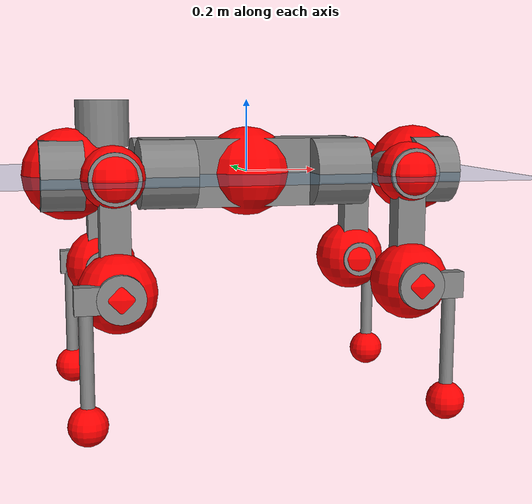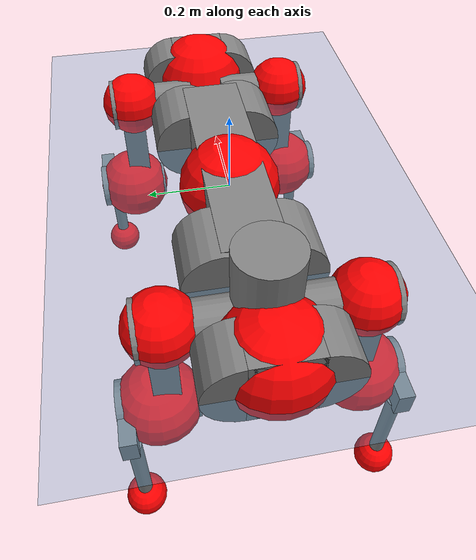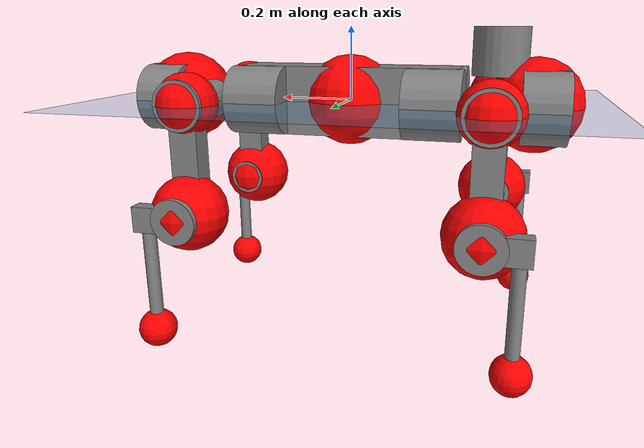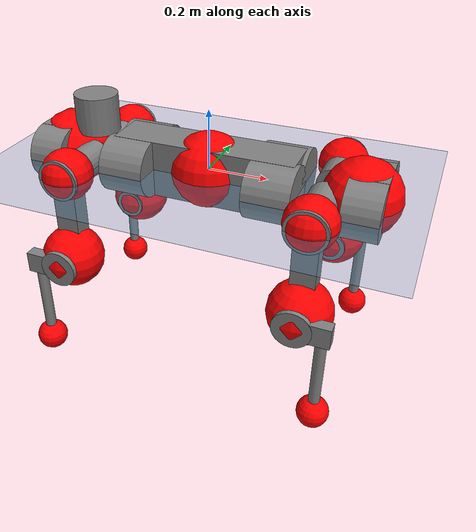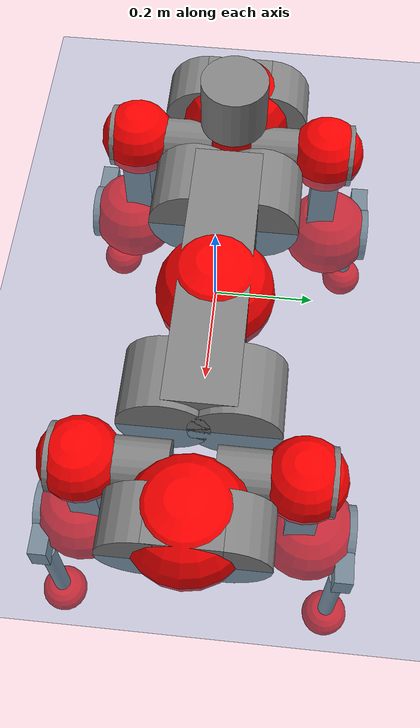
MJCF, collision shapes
<mujoco model="anymal_c">
  <compiler angle="radian" assetdir="assets" balanceinertia="true" inertiafromgeom="false"/>

  <option timestep="0.005" density="1.2" viscosity="2e-05"/>

  <size nkey="1"/>

  <visual>
    <quality shadowsize="8192"/>
    <map shadowclip="0.5"/>
  </visual>

  <default>
    <default class="/">
      <material specular="0" shininess="0.25"/>
      <geom contype="0" conaffinity="0" group="1" solref="-1000 -80"/>
      <site size="0.01 0.005 0.005" group="5"/>
      <general forcelimited="true" forcerange="-80 80" biastype="affine" gainprm="80" biasprm="0 -80 -2"/>
      <default class="anymal_c">
        <joint armature="0.01" damping="0.01" frictionloss="0.1"/>
        <default class="visual">
          <geom type="mesh" group="2"/>
          <default class="visual_zflip"/>
        </default>
        <default class="collision">
          <geom type="cylinder" group="3"/>
          <default class="foot">
            <geom size="0.03 0 0" type="sphere" condim="6" priority="1" friction="0.8 0.02 0.01" solimp="0.015 1 0.03"/>
          </default>
        </default>
      </default>
      <default class="reward_collision_sphere">
        <geom group="5" rgba="1 0 0 1"/>
      </default>
    </default>
  </default>

  <asset>
    <texture type="skybox" colorspace="auto" name="//unnamed_texture_0" builtin="gradient" rgb1="0.95 0.95 0.95" rgb2="0.95 0.95 0.95" width="100" height="600"/>
    <texture type="2d" colorspace="auto" name="texplane" builtin="checker" rgb1="0.345 0.575 0.748" rgb2="0.345 0.575 0.748" markrgb="1 1 1" width="512" height="512"/>
    <texture type="2d" colorspace="linear" name="base" file="base.png"/>
    <texture type="2d" colorspace="linear" name="top_shell" file="top_shell.png"/>
    <texture type="2d" colorspace="linear" name="bottom_shell" file="bottom_shell.png"/>
    <texture type="2d" colorspace="linear" name="remote" file="remote.png"/>
    <texture type="2d" colorspace="linear" name="hatch" file="hatch.png"/>
    <texture type="2d" colorspace="linear" name="handle" file="handle.png"/>
    <texture type="2d" colorspace="linear" name="face" file="face.png"/>
    <texture type="2d" colorspace="linear" name="battery" file="battery.png"/>
    <texture type="2d" colorspace="linear" name="lidar_cage" file="lidar_cage.png"/>
    <texture type="2d" colorspace="linear" name="depth_camera" file="depth_camera.png"/>
    <texture type="2d" colorspace="linear" name="wide_angle_camera" file="wide_angle_camera.png"/>
    <texture type="2d" colorspace="linear" name="lidar" file="lidar.png"/>
    <texture type="2d" colorspace="linear" name="drive" file="drive.png"/>
    <texture type="2d" colorspace="linear" name="hip_l" file="hip_l.png"/>
    <texture type="2d" colorspace="linear" name="shank_l" file="shank_l.png"/>
    <texture type="2d" colorspace="linear" name="foot" file="foot.png"/>
    <texture type="2d" colorspace="linear" name="thigh" file="thigh.png"/>
    <texture type="2d" colorspace="linear" name="shank_r" file="shank_r.png"/>
    <texture type="2d" colorspace="linear" name="hip_r" file="hip_r.png"/>
    <material name="MatPlane" class="/" texture="texplane" texuniform="true" texrepeat="2 2" specular="0.9" shininess="0.5"/>
    <material name="black_plastic" class="/" rgba="0.007 0.007 0.007 1"/>
    <material name="green" class="/" rgba="0.052 0.178 0.033 1"/>
    <material name="red" class="/" rgba="0.178 0.006 0.005 1"/>
    <material name="yellow" class="/" rgba="0.178 0.119 0.006 1"/>
    <material name="lwl" class="/" rgba="0.8 0.8 0.8 1"/>
    <material name="base" class="/" texture="base"/>
    <material name="top_shell" class="/" texture="top_shell"/>
    <material name="bottom_shell" class="/" texture="bottom_shell"/>
    <material name="hip_l" class="/" texture="hip_l"/>
    <material name="thigh" class="/" texture="thigh"/>
    <material name="shank_l" class="/" texture="shank_l"/>
    <material name="foot" class="/" texture="foot"/>
    <material name="hip_r" class="/" texture="hip_r"/>
    <material name="shank" class="/" texture="shank_r"/>
    <material name="hatch" class="/" texture="hatch"/>
    <material name="remote" class="/" texture="remote"/>
    <material name="handle" class="/" texture="handle"/>
    <material name="face" class="/" texture="face"/>
    <material name="depth_camera" class="/" texture="depth_camera"/>
    <material name="wide_angle_camera" class="/" texture="wide_angle_camera"/>
    <material name="battery" class="/" texture="battery"/>
    <material name="lidar_cage" class="/" texture="lidar_cage"/>
    <material name="lidar" class="/" texture="lidar"/>
    <material name="drive" class="/" texture="drive"/>
    <mesh name="base_0" class="/" file="base_0.obj"/>
    <mesh name="base_1" class="/" file="base_1.obj"/>
    <mesh name="base_2" class="/" file="base_2.obj"/>
    <mesh name="base_3" class="/" file="base_3.obj"/>
    <mesh name="base_4" class="/" file="base_4.obj"/>
    <mesh name="base_5" class="/" file="base_5.obj"/>
    <mesh name="top_shell" class="/" file="top_shell.obj"/>
    <mesh name="bottom_shell" class="/" file="bottom_shell.obj"/>
    <mesh name="remote" class="/" file="remote.obj"/>
    <mesh name="handle" class="/" file="handle.obj"/>
    <mesh name="face" class="/" file="face.obj"/>
    <mesh name="wide_angle_camera" class="/" file="wide_angle_camera.obj"/>
    <mesh name="depth_camera" class="/" file="depth_camera.obj"/>
    <mesh name="battery" class="/" file="battery.obj"/>
    <mesh name="lidar_cage" class="/" file="lidar_cage.obj"/>
    <mesh name="lidar" class="/" file="lidar.obj"/>
    <mesh name="drive" class="/" file="drive.obj"/>
    <mesh name="hip_l" class="/" file="hip_l.obj"/>
    <mesh name="thigh" class="/" file="thigh.obj"/>
    <mesh name="shank_l" class="/" file="shank_l.obj"/>
    <mesh name="foot" class="/" file="foot.obj"/>
    <mesh name="hip_r" class="/" file="hip_r.obj"/>
    <mesh name="hatch" class="/" file="hatch.obj"/>
    <mesh name="shank_r" class="/" file="shank_r.obj"/>
  </asset>

  <worldbody>
    <geom name="floor" class="/" size="100 100 0.125" type="plane" group="0" material="MatPlane"/>
    <light name="toplight_shadow" class="/" pos="0 0 5" dir="0.0990148 0.0990148 -0.990148" type="directional" ambient="0.04 0.04 0.04" diffuse="0.55 0.55 0.55" specular="0.12 0.12 0.12"/>
    <light name="toplight_fill" class="/" pos="0 0 5" dir="0.0990148 0.0990148 -0.990148" type="directional" castshadow="false" ambient="0.04 0.04 0.04" diffuse="0.3 0.3 0.3" specular="0.08 0.08 0.08"/>
    <body name="trunk" childclass="anymal_c" pos="0.000857336 -0.000229995 -0.000174014" quat="1 -0.000210036 -0.000242979 -2.9658e-05">
      <inertial pos="0.000292793 -0.00279738 0.0493377" quat="0.499524 0.499158 0.50415 0.497141" mass="22.6582" diaginertia="1.07614 0.609115 0.247793"/>
      <joint name="//unnamed_joint_0" type="free" armature="0" damping="0" frictionloss="0"/>
      <geom name="//unnamed_geom_1" class="visual" material="green" mesh="base_0"/>
      <geom name="//unnamed_geom_2" class="visual" material="yellow" mesh="base_1"/>
      <geom name="//unnamed_geom_3" class="visual" material="red" mesh="base_2"/>
      <geom name="//unnamed_geom_4" class="visual" material="black_plastic" mesh="base_3"/>
      <geom name="//unnamed_geom_5" class="visual" material="lwl" mesh="base_4"/>
      <geom name="//unnamed_geom_6" class="visual" material="base" mesh="base_5"/>
      <geom name="trunk_1" class="collision" size="0.302959 0.073128 0.0940217" type="box"/>
      <geom name="trunk_2" class="collision" size="0.0940217 0.0757397" pos="0.241338 0.069709 0" quat="0.707107 0 0.707107 0"/>
      <geom name="trunk_3" class="collision" size="0.0940217 0.0757397" pos="-0.241338 0.069709 0" quat="0.707107 0 0.707107 0"/>
      <geom name="trunk_4" class="collision" size="0.0940217 0.0757397" pos="0.241338 -0.069709 0" quat="0.707107 0 0.707107 0"/>
      <geom name="trunk_5" class="collision" size="0.0940217 0.0757397" pos="-0.241338 -0.069709 0" quat="0.707107 0 0.707107 0"/>
      <geom name="//unnamed_geom_12" class="visual" material="top_shell" mesh="top_shell"/>
      <geom name="//unnamed_geom_13" class="visual" material="bottom_shell" mesh="bottom_shell"/>
      <geom name="//unnamed_geom_14" class="visual" material="remote" mesh="remote"/>
      <geom name="//unnamed_geom_15" class="visual" material="handle" mesh="handle"/>
      <geom name="//unnamed_geom_16" class="visual" pos="0.45993 0 0" quat="1 0 0 0" material="face" mesh="face"/>
      <geom name="trunk_6" class="collision" size="0.0574577 0.073128 0.0940217" pos="0.520958 0 0" type="box"/>
      <geom name="//unnamed_geom_18" class="collision" size="0.0940217 0.0574577" pos="0.520958 0.069709 0" quat="0.707107 0 0.707107 0"/>
      <geom name="//unnamed_geom_19" class="collision" size="0.0940217 0.0574577" pos="0.520958 -0.069709 0" quat="0.707107 0 0.707107 0"/>
      <geom name="//unnamed_geom_20" class="visual" pos="0.512244 0 -0.02942" quat="0.965926 0 0.258819 0" material="depth_camera" mesh="depth_camera"/>
      <geom name="//unnamed_geom_21" class="visual" pos="0.569226 0 0.0153983" material="wide_angle_camera" mesh="wide_angle_camera"/>
      <geom name="//unnamed_geom_22" class="visual_zflip" pos="-0.45993 0 0" quat="0 0 0 1" material="face" mesh="face"/>
      <geom name="trunk_7" class="collision" size="0.0574577 0.073128 0.0940217" pos="-0.520958 0 0" quat="0 0 0 1" type="box"/>
      <geom name="//unnamed_geom_24" class="collision" size="0.0940217 0.0574577" pos="-0.520958 -0.069709 0" quat="0 -0.707107 0 0.707107"/>
      <geom name="//unnamed_geom_25" class="collision" size="0.0940217 0.0574577" pos="-0.520958 0.069709 0" quat="0 -0.707107 0 0.707107"/>
      <geom name="//unnamed_geom_26" class="visual" pos="-0.512244 0 -0.02942" quat="0 -0.258819 0 0.965926" material="depth_camera" mesh="depth_camera"/>
      <geom name="//unnamed_geom_27" class="visual_zflip" pos="-0.569226 0 0.0153983" quat="0 0 0 1" material="wide_angle_camera" mesh="wide_angle_camera"/>
      <geom name="//unnamed_geom_28" class="visual" material="battery" mesh="battery"/>
      <geom name="//unnamed_geom_29" class="visual" pos="0 0.074646 0.0304967" quat="0.683013 -0.183013 0.183013 0.683013" material="depth_camera" mesh="depth_camera"/>
      <geom name="//unnamed_geom_30" class="visual" pos="0 -0.074646 0.0304967" quat="0.683013 0.183013 0.183013 -0.683013" material="depth_camera" mesh="depth_camera"/>
      <geom name="//unnamed_geom_31" class="visual" pos="-0.403895 0 0.0756031" quat="1 0 0 0" material="lidar_cage" mesh="lidar_cage"/>
      <geom name="trunk_8" class="collision" size="0.073128 0.0626811" pos="-0.403895 0 0.13732"/>
      <geom name="//unnamed_geom_33" class="visual" pos="-0.403895 -4.46927e-05 0.146269" quat="0.707107 0 0 -0.707107" material="lidar" mesh="lidar"/>
      <geom name="//unnamed_geom_34" class="visual" pos="0.332769 0.103579 -5.65289e-10" quat="0.258819 0.965926 0 0" material="drive" mesh="drive"/>
      <geom name="//unnamed_geom_35" class="visual" pos="0.332769 -0.103579 5.65289e-10" quat="0.258819 -0.965926 0 0" material="drive" mesh="drive"/>
      <geom name="//unnamed_geom_36" class="visual" pos="-0.332769 0.103579 5.65289e-10" quat="0 0 0.965926 -0.258819" material="drive" mesh="drive"/>
      <geom name="//unnamed_geom_37" class="visual" pos="-0.332769 -0.103579 -5.65289e-10" quat="0 0 -0.965926 -0.258819" material="drive" mesh="drive"/>
      <geom name="//unnamed_geom_38" class="visual" pos="0.128714 0 0.0750888" quat="1 0 0 0" material="hatch" mesh="hatch"/>
      <geom name="//unnamed_geom_39" class="reward_collision_sphere" size="0.125362"/>
      <geom name="//unnamed_geom_40" class="reward_collision_sphere" size="0.125362" pos="0.499321 0 0"/>
      <geom name="//unnamed_geom_41" class="reward_collision_sphere" size="0.125362" pos="-0.499321 0 0"/>
      <site name="imu" pos="0.28974 0.00903857 0.0339123" size="0.0104469"/>
      <camera name="track" pos="0 -1.99169 0" quat="0.707107 0.707107 0 0" mode="trackcom"/>
      <camera name="ego_camera" pos="0.499321 0 -0.0411445" quat="-0.5 -0.5 0.5 0.5"/>
      <body name="LF_HIP" pos="0.330783 0.101327 -0.00106403" quat="0.258562 0.965995 -0.000350769 -4.05886e-05">
        <inertial pos="0.0628639 -0.0173694 -0.00813986" quat="-0.126981 0.710098 -0.135074 0.679258" mass="3.11975" diaginertia="0.00959822 0.00451847 0.0036756"/>
        <joint name="LF_HAA" pos="0 0 0" axis="0.999999 0.00164075 0.000538654" range="-0.719257 0.496874" armature="0.0107059" damping="0.0191043" frictionloss="0.0934426"/>
        <geom name="//unnamed_geom_42" class="visual" pos="0 -3.32534e-05 5.46184e-06" quat="0.258819 -0.965926 0 0" material="hip_l" mesh="hip_l"/>
        <geom name="//unnamed_geom_43" class="visual" pos="0.0664651 -0.0790505 -0.0458822" quat="0.183013 -0.683013 0.683013 0.183013" material="drive" mesh="drive"/>
        <geom name="//unnamed_geom_44" class="collision" size="0.0522343 0.073128" pos="0.0664651 -0.0119101 -0.00710257" quat="-0.353553 -0.612372 0.612372 -0.353553"/>
        <body name="LF_THIGH" pos="0.065465 -0.0696815 -0.0422367" quat="0.182874 -0.682468 0.683852 0.182048">
          <inertial pos="0.0347065 0.000173084 -0.251309" quat="0.993246 -0.00714076 -0.0705759 0.0918152" mass="3.4126" diaginertia="0.0509137 0.028438 0.00480103"/>
          <joint name="LF_HFE" pos="0 0 0" axis="0.999992 -0.00359291 -0.00172627" stiffness="0.00238761" range="-3.08909 3.17879" armature="0.0109326" damping="0.0209629" frictionloss="0.0966591"/>
          <geom name="//unnamed_geom_45" class="visual" pos="0.00226335 3.56651e-06 0" quat="0.707107 0 0 -0.707107" material="thigh" mesh="thigh"/>
          <geom name="//unnamed_geom_46" class="collision" size="0.0679046 0.0417874" pos="0.0443841 0 0" quat="0.5 0.5 -0.5 -0.5"/>
          <geom name="//unnamed_geom_47" class="collision" size="0.0391757 0.0313406 0.147629" pos="0.033288 0 -0.145357" quat="0.707107 0 0 -0.707107" type="box"/>
          <geom name="//unnamed_geom_48" class="visual" pos="0.111293 0 -0.293155" quat="1 0 0 0" material="drive" mesh="drive"/>
          <geom name="//unnamed_geom_49" class="collision" size="0.0522343 0.073128" pos="0.0336209 0 -0.293155" quat="0.707107 0 0.707107 0"/>
          <geom name="//unnamed_geom_50" class="reward_collision_sphere" size="0.0835749" pos="0.02774 0 0"/>
          <body name="LF_SHANK" pos="0.111998 0.00261824 -0.292861" quat="1 2.06541e-05 0.000338259 0.000213589">
            <inertial pos="0.00620534 -0.0620485 -0.0838537" quat="0.993032 -0.115452 0.000329226 -0.0236115" mass="0.678322" diaginertia="0.0167381 0.00911993 0.00128861"/>
            <joint name="LF_KFE" pos="0 0 0" axis="0.999991 0.0043204 2.29849e-05" range="-3.10025 3.14213" armature="0.0103228" damping="0.00777312" frictionloss="0.106297"/>
            <geom name="//unnamed_geom_51" class="visual" pos="0.000738028 0.0039352 0" quat="0.707107 0 0 -0.707107" material="shank_l" mesh="shank_l"/>
            <geom name="LF_kfe_act" class="collision" size="0.0626811 0.0208937" pos="0.022192 0 0" quat="0.5 0.5 -0.5 -0.5"/>
            <geom name="//unnamed_geom_53" class="collision" size="0.0600684 0.0352581 0.019849" pos="0.022192 -0.05726 0" quat="0.5 0.5 -0.5 -0.5" type="box"/>
            <geom name="//unnamed_geom_54" class="visual" pos="0.0144801 -0.0863162 -0.34764" quat="0.382683 0 0 -0.92388" material="foot" mesh="foot"/>
            <geom name="LF_calf" class="collision" size="0.018282 0.147564" pos="0.0144803 -0.0875844 -0.17382" quat="0.707107 0 0 -0.707107"/>
            <geom name="LF_foot" class="foot" size="0.0308636" pos="0.0144803 -0.0875844 -0.324497" quat="0.707107 0 0 -0.707107"/>
            <geom name="//unnamed_geom_57" class="reward_collision_sphere" size="0.104469" pos="-0.0554801 0 0"/>
            <geom name="//unnamed_geom_58" class="reward_collision_sphere" size="0.0522343" pos="0.0144803 -0.0875844 -0.324497"/>
            <site name="LF_foot" class="foot" pos="0.0144803 -0.0875844 -0.324497" quat="0.707107 0 0 -0.707107" size="0.0104469"/>
          </body>
        </body>
      </body>
      <body name="RF_HIP" pos="0.330502 -0.103952 0.0010076" quat="0.258819 -0.965926 -2.91744e-05 2.85395e-05">
        <inertial pos="0.061147 0.0131817 -0.0106979" quat="0.138498 0.673571 0.13887 0.712626" mass="3.13335" diaginertia="0.00941021 0.00491978 0.00362425"/>
        <joint name="RF_HAA" pos="0 0 0" axis="0.999939 0.0110344 0.00028711" range="-0.511951 0.726255" armature="0.0105035" damping="0" frictionloss="0.104469"/>
        <geom name="//unnamed_geom_59" class="visual" pos="0 3.32531e-05 5.46183e-06" quat="0.258819 0.965926 0 0" material="hip_r" mesh="hip_r"/>
        <geom name="//unnamed_geom_60" class="visual" pos="0.0664651 0.0790505 -0.0458822" quat="0.183013 0.683013 0.683013 -0.183013" material="drive" mesh="drive"/>
        <geom name="//unnamed_geom_61" class="collision" size="0.0522343 0.073128" pos="0.0664651 0.0119101 -0.00710257" quat="-0.353553 0.612372 0.612372 0.353553"/>
        <body name="RF_THIGH" pos="0.0680955 0.0716919 -0.0456826" quat="0.183755 0.683224 0.682832 -0.182155">
          <inertial pos="0.0369839 0.000446776 -0.25383" quat="0.993255 -0.0117786 -0.0790166 0.0840349" mass="3.66248" diaginertia="0.0503373 0.0286692 0.0050495"/>
          <joint name="RF_HFE" pos="0 0 0" axis="0.999999 0.00148412 -0.000445862" range="-3.14697 3.15931" armature="0.00948827" damping="0.0112742" frictionloss="0.106656"/>
          <geom name="//unnamed_geom_62" class="visual" pos="0.00226335 3.56651e-06 0" quat="0.707107 0 0 -0.707107" material="thigh" mesh="thigh"/>
          <geom name="//unnamed_geom_63" class="collision" size="0.0679046 0.0417874" pos="0.0443841 0 0" quat="0.5 0.5 0.5 0.5"/>
          <geom name="//unnamed_geom_64" class="collision" size="0.0391757 0.0313406 0.147629" pos="0.033288 0 -0.145357" quat="0.707107 0 0 0.707107" type="box"/>
          <geom name="//unnamed_geom_65" class="visual" pos="0.111293 0 -0.293155" quat="1 0 0 0" material="drive" mesh="drive"/>
          <geom name="//unnamed_geom_66" class="collision" size="0.0522343 0.073128" pos="0.0336209 0 -0.293155" quat="0.707107 0 0.707107 0"/>
          <geom name="//unnamed_geom_67" class="reward_collision_sphere" size="0.0835749" pos="0.02774 0 0"/>
          <body name="RF_SHANK" pos="0.109341 -1.92135e-05 -0.293056" quat="1 5.20062e-06 0.000500569 0.000549323">
            <inertial pos="0.00379845 0.0609248 -0.0829056" quat="0.993837 0.109168 -0.00856619 0.0172108" mass="0.706561" diaginertia="0.0177251 0.00925529 0.00132565"/>
            <joint name="RF_KFE" pos="0 0 0" axis="0.999999 0.000639753 -0.00142279" range="-3.19096 3.10159" armature="0.0119535" damping="0.0228012" frictionloss="0.108013"/>
            <geom name="//unnamed_geom_68" class="visual" pos="0.000738024 -0.0039352 0" quat="0.707107 0 0 0.707107" material="shank" mesh="shank_r"/>
            <geom name="RF_kfe_act" class="collision" size="0.0626811 0.0208937" pos="0.022192 0 0" quat="0.5 0.5 0.5 0.5"/>
            <geom name="//unnamed_geom_70" class="collision" size="0.0600684 0.0352581 0.019849" pos="0.022192 0.05726 0" quat="0.5 0.5 0.5 0.5" type="box"/>
            <geom name="//unnamed_geom_71" class="visual" pos="0.0144805 0.0863162 -0.34764" quat="0.382683 0 0 0.92388" material="foot" mesh="foot"/>
            <geom name="RF_calf" class="collision" size="0.018282 0.147564" pos="0.0144803 0.0875844 -0.17382" quat="0.707107 0 0 0.707107"/>
            <geom name="RF_foot" class="foot" size="0.0280331" pos="0.0144803 0.0875844 -0.324497" quat="0.707107 0 0 0.707107"/>
            <geom name="//unnamed_geom_74" class="reward_collision_sphere" size="0.104469" pos="-0.0554801 0 0"/>
            <geom name="//unnamed_geom_75" class="reward_collision_sphere" size="0.0522343" pos="0.0144803 0.0875844 -0.324497"/>
            <site name="RF_foot" class="foot" pos="0.0144803 0.0875844 -0.324497" quat="0.707107 0 0 0.707107" size="0.0104469"/>
          </body>
        </body>
      </body>
      <body name="LH_HIP" pos="-0.329422 0.10178 -0.00143105" quat="-2.39651e-06 -2.21242e-05 0.965963 -0.258682">
        <inertial pos="0.0629741 0.0171444 -0.0112433" quat="0.131853 0.687101 0.133374 0.701939" mass="3.28327" diaginertia="0.0104802 0.00504519 0.00385174"/>
        <joint name="LH_HAA" pos="0 0 0" axis="0.999894 0.0139746 -0.00398489" range="-0.502541 0.722631" armature="0.0108471" damping="0" frictionloss="0.105349"/>
        <geom name="//unnamed_geom_76" class="visual" pos="0 3.32531e-05 5.46183e-06" quat="-0.258819 -0.965926 0 0" material="hip_r" mesh="hip_r"/>
        <geom name="//unnamed_geom_77" class="visual" pos="0.0664651 0.0790505 -0.0458822" quat="0.183013 0.683013 0.683013 -0.183013" material="drive" mesh="drive"/>
        <geom name="//unnamed_geom_78" class="collision" size="0.0522343 0.073128" pos="0.0664651 0.0119101 -0.00710257" quat="-0.353553 0.612372 0.612372 0.353553"/>
        <body name="LH_THIGH" pos="0.0657167 0.0713903 -0.0437132" quat="0.183256 0.683079 0.682869 -0.183056">
          <inertial pos="0.0318529 -0.000430807 -0.255221" quat="0.992756 -0.00462356 -0.081219 0.0884193" mass="3.38678" diaginertia="0.0478674 0.0292416 0.00468142"/>
          <joint name="LH_HFE" pos="0 0 0" axis="1 -0.000713059 0.000303555" stiffness="0.010523" range="-3.16593 3.09825" armature="0.00989943" damping="0" frictionloss="0.10411"/>
          <geom name="//unnamed_geom_79" class="visual" pos="0.00226335 3.56651e-06 0" quat="0.707107 0 0 -0.707107" material="thigh" mesh="thigh"/>
          <geom name="//unnamed_geom_80" class="collision" size="0.0679046 0.0417874" pos="0.0443841 0 0" quat="0.5 0.5 -0.5 -0.5"/>
          <geom name="//unnamed_geom_81" class="collision" size="0.0391757 0.0313406 0.147629" pos="0.033288 0 -0.145357" quat="0.707107 0 0 -0.707107" type="box"/>
          <geom name="//unnamed_geom_82" class="visual" pos="0.111293 0 -0.293155" quat="1 0 0 0" material="drive" mesh="drive"/>
          <geom name="//unnamed_geom_83" class="collision" size="0.0522343 0.073128" pos="0.0336209 0 -0.293155" quat="0.707107 0 0.707107 0"/>
          <geom name="//unnamed_geom_84" class="reward_collision_sphere" size="0.0835749" pos="0.02774 0 0"/>
          <body name="LH_SHANK" pos="0.111144 -0.00119796 -0.292735" quat="1 -7.50226e-05 -0.00018508 4.72303e-06">
            <inertial pos="0.00720009 0.0636739 -0.0825857" quat="0.992565 0.118105 -0.00991056 0.0276961" mass="0.688779" diaginertia="0.0171258 0.00963272 0.00131804"/>
            <joint name="LH_KFE" pos="0 0 0" axis="1 -0.000118852 0.000701187" range="-3.08998 3.09563" armature="0.0119002" damping="0.0234685" frictionloss="0.0904532"/>
            <geom name="//unnamed_geom_85" class="visual" pos="0.000738024 -0.0039352 0" quat="-0.707107 0 0 -0.707107" material="shank" mesh="shank_r"/>
            <geom name="LH_kfe_act" class="collision" size="0.0626811 0.0208937" pos="0.022192 0 0" quat="0.5 0.5 -0.5 -0.5"/>
            <geom name="//unnamed_geom_87" class="collision" size="0.0600684 0.0352581 0.019849" pos="0.022192 0.05726 0" quat="0.5 0.5 -0.5 -0.5" type="box"/>
            <geom name="//unnamed_geom_88" class="visual" pos="0.0144805 0.0863162 -0.34764" quat="-0.382683 0 0 -0.92388" material="foot" mesh="foot"/>
            <geom name="LH_calf" class="collision" size="0.018282 0.147564" pos="0.0144803 0.0875844 -0.17382" quat="0.707107 0 0 -0.707107"/>
            <geom name="LH_foot" class="foot" size="0.0336896" pos="0.0144803 0.0875844 -0.324497" quat="0.707107 0 0 -0.707107"/>
            <geom name="//unnamed_geom_91" class="reward_collision_sphere" size="0.104469" pos="-0.0554801 0 0"/>
            <geom name="//unnamed_geom_92" class="reward_collision_sphere" size="0.0522343" pos="0.0144803 0.0875844 -0.324497"/>
            <site name="LH_foot" class="foot" pos="0.0144803 0.0875844 -0.324497" quat="0.707107 0 0 -0.707107" size="0.0104469"/>
          </body>
        </body>
      </body>
      <body name="RH_HIP" pos="-0.33029 -0.104609 0.00109764" quat="-2.91626e-06 -6.37656e-05 -0.965929 -0.258808">
        <inertial pos="0.0611821 -0.0140724 -0.0113521" quat="-0.126542 0.708107 -0.124788 0.683374" mass="3.17543" diaginertia="0.00953336 0.00468724 0.0036665"/>
        <joint name="RH_HAA" pos="0 0 0" axis="0.999893 0.00166116 -0.0145564" stiffness="0.00151598" range="-0.778333 0.519657" armature="0.0102466" damping="0.00418635" frictionloss="0.105288"/>
        <geom name="//unnamed_geom_93" class="visual" pos="0 -3.32534e-05 5.46184e-06" quat="-0.258819 0.965926 0 0" material="hip_l" mesh="hip_l"/>
        <geom name="//unnamed_geom_94" class="visual" pos="0.0664651 -0.0790505 -0.0458822" quat="-0.183013 0.683013 -0.683013 -0.183013" material="drive" mesh="drive"/>
        <geom name="//unnamed_geom_95" class="collision" size="0.0522343 0.073128" pos="0.0664651 -0.0119101 -0.00710257" quat="0.353553 0.612372 -0.612372 0.353553"/>
        <body name="RH_THIGH" pos="0.0689476 -0.0717083 -0.0452823" quat="-0.183326 0.683734 -0.682099 -0.183414">
          <inertial pos="0.034789 0.00149774 -0.253466" quat="0.993104 -0.00580126 -0.0811988 0.0843621" mass="3.31208" diaginertia="0.0481229 0.0286572 0.0047517"/>
          <joint name="RH_HFE" pos="0 0 0" axis="0.999982 0.00604838 -0.000132129" stiffness="0.0029093" range="-3.10695 3.1569" armature="0.0110034" damping="0.0140036" frictionloss="0.106026"/>
          <geom name="//unnamed_geom_96" class="visual" pos="0.00226335 3.56651e-06 0" quat="0.707107 0 0 -0.707107" material="thigh" mesh="thigh"/>
          <geom name="//unnamed_geom_97" class="collision" size="0.0679046 0.0417874" pos="0.0443841 0 0" quat="0.5 0.5 0.5 0.5"/>
          <geom name="//unnamed_geom_98" class="collision" size="0.0391757 0.0313406 0.147629" pos="0.033288 0 -0.145357" quat="0.707107 0 0 0.707107" type="box"/>
          <geom name="//unnamed_geom_99" class="visual" pos="0.111293 0 -0.293155" quat="1 0 0 0" material="drive" mesh="drive"/>
          <geom name="//unnamed_geom_100" class="collision" size="0.0522343 0.073128" pos="0.0336209 0 -0.293155" quat="0.707107 0 0.707107 0"/>
          <geom name="//unnamed_geom_101" class="reward_collision_sphere" size="0.0835749" pos="0.02774 0 0"/>
          <body name="RH_SHANK" pos="0.110361 0.00266497 -0.292605" quat="0.999999 -0.000473228 -0.000391714 -0.00119711">
            <inertial pos="0.00883032 -0.061417 -0.0837576" quat="0.992196 -0.123414 0.00472567 -0.0171175" mass="0.682587" diaginertia="0.016774 0.00905718 0.00127003"/>
            <joint name="RH_KFE" pos="0 0 0" axis="1 0.000418216 -0.000558386" range="-3.13566 3.19037" armature="0.0105175" damping="0.0232331" frictionloss="0.107715"/>
            <geom name="//unnamed_geom_102" class="visual" pos="0.000738028 0.0039352 0" quat="0.707107 0 0 -0.707107" material="shank_l" mesh="shank_l"/>
            <geom name="RH_kfe_act" class="collision" size="0.0626811 0.0208937" pos="0.022192 0 0" quat="0.5 0.5 0.5 0.5"/>
            <geom name="//unnamed_geom_104" class="collision" size="0.0600684 0.0352581 0.019849" pos="0.022192 -0.05726 0" quat="0.5 0.5 0.5 0.5" type="box"/>
            <geom name="//unnamed_geom_105" class="visual" pos="0.0144801 -0.0863162 -0.34764" quat="0.382683 0 0 -0.92388" material="foot" mesh="foot"/>
            <geom name="RH_calf" class="collision" size="0.018282 0.147564" pos="0.0144803 -0.0875844 -0.17382" quat="0.707107 0 0 0.707107"/>
            <geom name="RH_foot" class="foot" size="0.0275851" pos="0.0144803 -0.0875844 -0.324497" quat="0.707107 0 0 0.707107"/>
            <geom name="//unnamed_geom_108" class="reward_collision_sphere" size="0.104469" pos="-0.0554801 0 0"/>
            <geom name="//unnamed_geom_109" class="reward_collision_sphere" size="0.0522343" pos="0.0144803 -0.0875844 -0.324497"/>
            <site name="RH_foot" class="foot" pos="0.0144803 -0.0875844 -0.324497" quat="0.707107 0 0 0.707107" size="0.0104469"/>
          </body>
        </body>
      </body>
    </body>
  </worldbody>

  <contact>
    <pair class="/" geom1="floor" geom2="LF_foot" name="//unnamed_contact_0"/>
    <pair class="/" geom1="floor" geom2="RF_foot" name="//unnamed_contact_1"/>
    <pair class="/" geom1="floor" geom2="LH_foot" name="//unnamed_contact_2"/>
    <pair class="/" geom1="floor" geom2="RH_foot" name="//unnamed_contact_3"/>
  </contact>

  <actuator>
    <general name="LF_HAA" class="/" joint="LF_HAA" forcerange="-76.6052 76.6052" gainprm="80.8708" biasprm="0 -80.8708 -2.09101"/>
    <general name="LF_HFE" class="/" joint="LF_HFE" forcerange="-75.1189 75.1189" gainprm="80.8708" biasprm="0 -80.8708 -2.09101"/>
    <general name="LF_KFE" class="/" joint="LF_KFE" forcerange="-85.2495 85.2495" gainprm="80.8708" biasprm="0 -80.8708 -2.09101"/>
    <general name="RF_HAA" class="/" joint="RF_HAA" forcerange="-85.466 85.466" gainprm="80.8708" biasprm="0 -80.8708 -2.09101"/>
    <general name="RF_HFE" class="/" joint="RF_HFE" forcerange="-92.8438 92.8438" gainprm="80.8708" biasprm="0 -80.8708 -2.09101"/>
    <general name="RF_KFE" class="/" joint="RF_KFE" forcerange="-87.0592 87.0592" gainprm="80.8708" biasprm="0 -80.8708 -2.09101"/>
    <general name="LH_HAA" class="/" joint="LH_HAA" forcerange="-84.7825 84.7825" gainprm="80.8708" biasprm="0 -80.8708 -2.09101"/>
    <general name="LH_HFE" class="/" joint="LH_HFE" forcerange="-76.8089 76.8089" gainprm="80.8708" biasprm="0 -80.8708 -2.09101"/>
    <general name="LH_KFE" class="/" joint="LH_KFE" forcerange="-85.553 85.553" gainprm="80.8708" biasprm="0 -80.8708 -2.09101"/>
    <general name="RH_HAA" class="/" joint="RH_HAA" forcerange="-85.047 85.047" gainprm="80.8708" biasprm="0 -80.8708 -2.09101"/>
    <general name="RH_HFE" class="/" joint="RH_HFE" forcerange="-92.7104 92.7104" gainprm="80.8708" biasprm="0 -80.8708 -2.09101"/>
    <general name="RH_KFE" class="/" joint="RH_KFE" forcerange="-80.4438 80.4438" gainprm="80.8708" biasprm="0 -80.8708 -2.09101"/>
  </actuator>

  <sensor>
    <gyro site="imu" name="imu_angular_velocity"/>
    <velocimeter site="imu" name="imu_linear_velocity"/>
    <framelinvel objtype="site" objname="LF_foot" name="LF_foot_global_linear_velocity"/>
    <framelinvel objtype="site" objname="RF_foot" name="RF_foot_global_linear_velocity"/>
    <framelinvel objtype="site" objname="LH_foot" name="LH_foot_global_linear_velocity"/>
    <framelinvel objtype="site" objname="RH_foot" name="RH_foot_global_linear_velocity"/>
  </sensor>

  <keyframe>
    <key name="home" qpos="0 0 0.55 1 0 0 0 0 0.4 -0.8 0 -0.4 0.8 0 -0.4 0.8 0 0.4 -0.8"/>
  </keyframe>
</mujoco>
